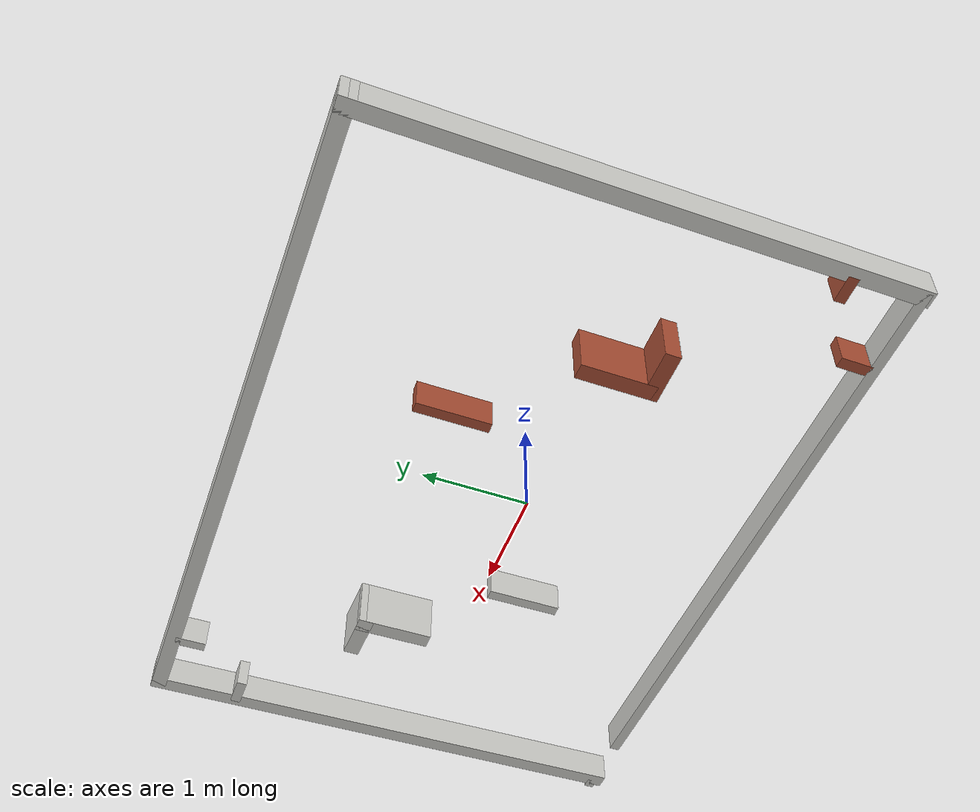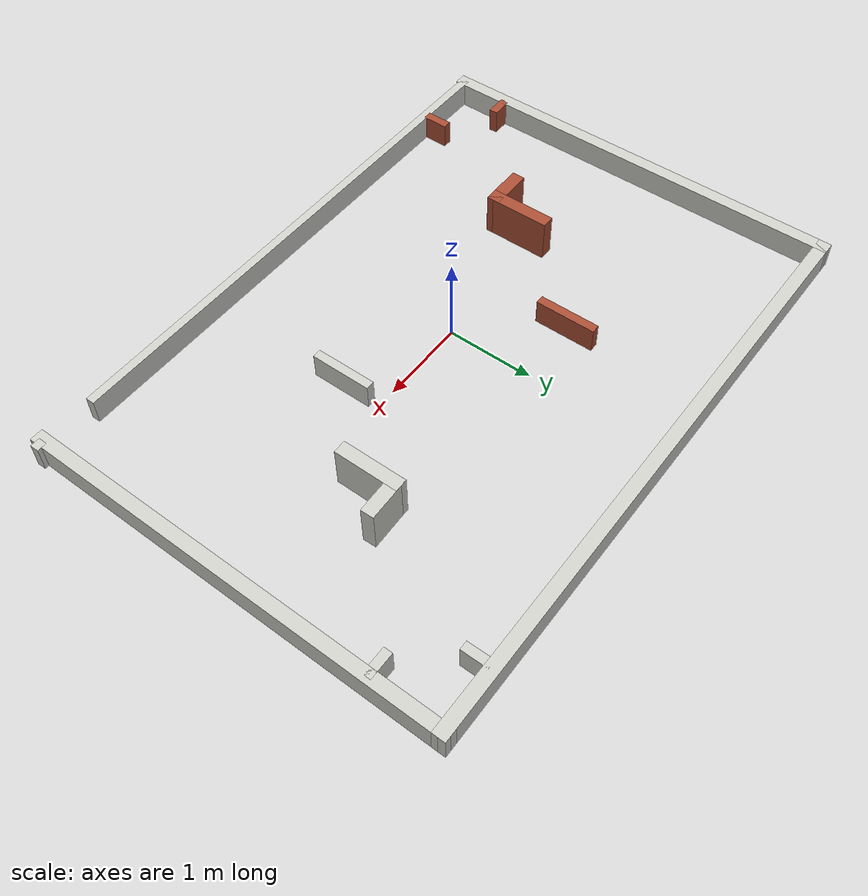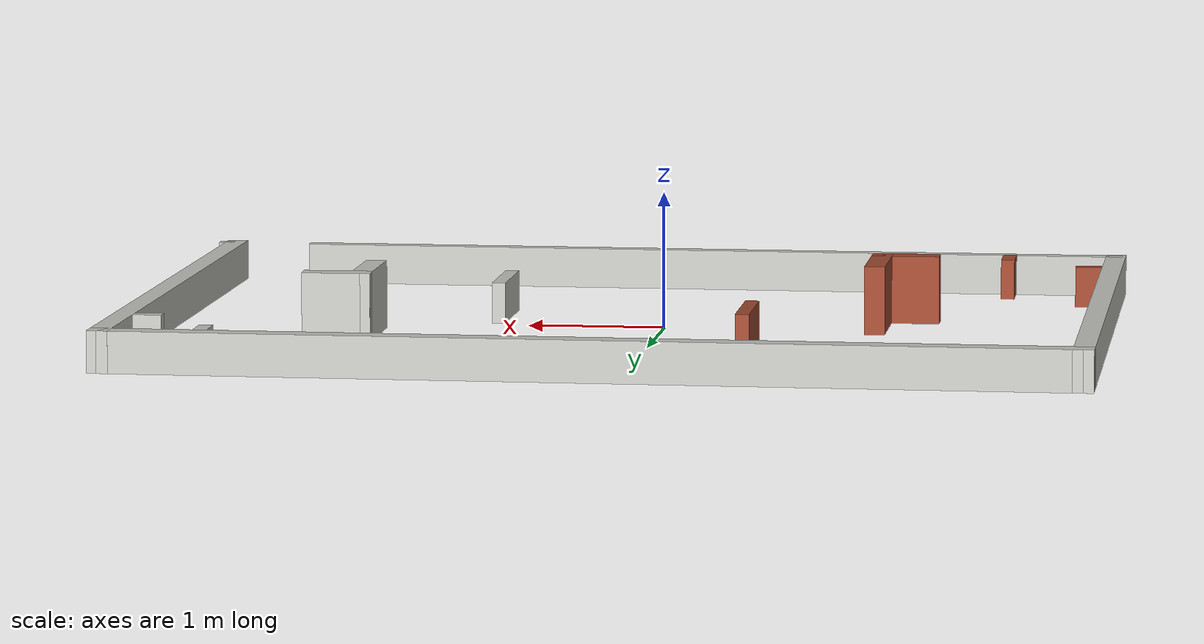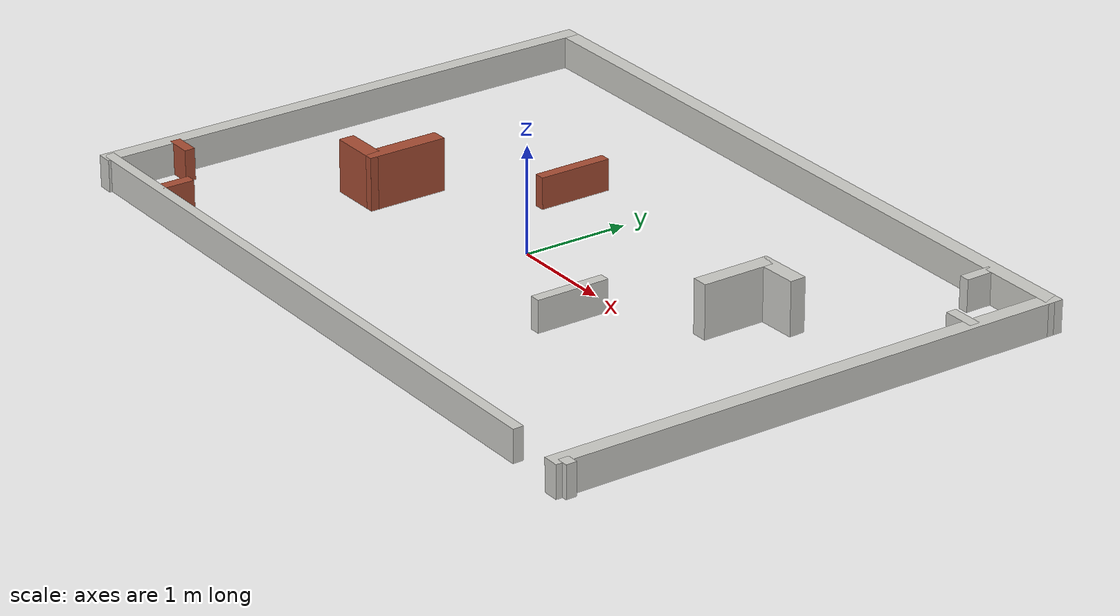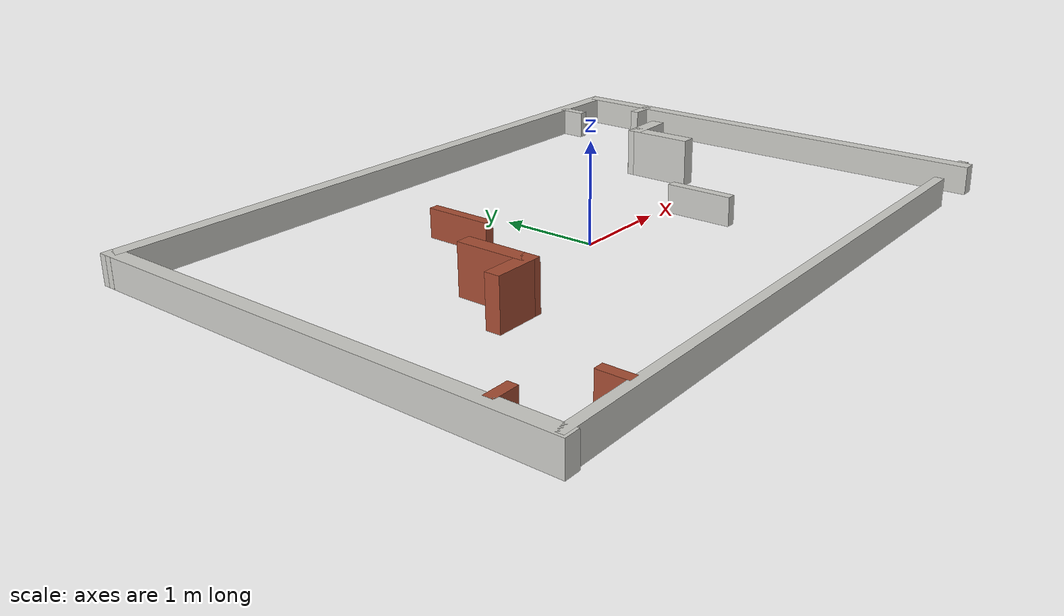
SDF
<?xml version='1.0'?>
<sdf version='1.6'>
  <model name='Building'>
    <pose frame=''>0.230304 0.224957 0 0 -0 0</pose>
    <link name='Wall_0'>
      <collision name='Wall_0_Collision'>
        <geometry>
          <box>
            <size>7.00909 0.15 0.3</size>
          </box>
        </geometry>
        <pose frame=''>0 0 0.15 0 -0 0</pose>
      </collision>
      <visual name='Wall_0_Visual'>
        <pose frame=''>0 0 0.15 0 -0 0</pose>
        <geometry>
          <box>
            <size>7.00909 0.15 0.3</size>
          </box>
        </geometry>
        <material>
          <script>
            <uri>file://media/materials/scripts/gazebo.material</uri>
            <name>Gazebo/CeilingTiled</name>
          </script>
          <ambient>1 1 1 1</ambient>
        </material>
        <meta>
          <layer>0</layer>
        </meta>
      </visual>
      <pose frame=''>-0.007804 2.42504 0 0 0 -0.005249</pose>
    </link>
    <link name='Wall_1'>
      <collision name='Wall_1_Collision'>
        <geometry>
          <box>
            <size>5.0001 0.15 0.3</size>
          </box>
        </geometry>
        <pose frame=''>0 0 0.15 0 -0 0</pose>
      </collision>
      <visual name='Wall_1_Visual'>
        <pose frame=''>0 0 0.15 0 -0 0</pose>
        <geometry>
          <box>
            <size>5.0001 0.15 0.3</size>
          </box>
        </geometry>
        <material>
          <script>
            <uri>file://media/materials/scripts/gazebo.material</uri>
            <name>Gazebo/CeilingTiled</name>
          </script>
          <ambient>1 1 1 1</ambient>
        </material>
        <meta>
          <layer>0</layer>
        </meta>
      </visual>
      <pose frame=''>3.4062 -0.017957 0 0 0 -1.57719</pose>
    </link>
    <link name='Wall_10'>
      <pose frame=''>0.012696 -2.40696 0 0 -0 0</pose>
      <visual name='Wall_10_Visual_0'>
        <pose frame=''>-0.354423 0 0.15 0 -0 0</pose>
        <geometry>
          <box>
            <size>6.29115 0.1 0.3</size>
          </box>
        </geometry>
        <material>
          <script>
            <uri>file://media/materials/scripts/gazebo.material</uri>
            <name>Gazebo/CeilingTiled</name>
          </script>
          <ambient>1 1 1 1</ambient>
        </material>
        <meta>
          <layer>0</layer>
        </meta>
      </visual>
      <collision name='Wall_10_Collision_0'>
        <geometry>
          <box>
            <size>6.29115 0.1 0.3</size>
          </box>
        </geometry>
        <pose frame=''>-0.354423 0 0.15 0 -0 0</pose>
      </collision>
      <visual name='Wall_10_Visual_1'>
        <pose frame=''>3.44558 0 0.15 0 -0 0</pose>
        <geometry>
          <box>
            <size>0.108846 0.1 0.3</size>
          </box>
        </geometry>
        <material>
          <script>
            <uri>file://media/materials/scripts/gazebo.material</uri>
            <name>Gazebo/CeilingTiled</name>
          </script>
          <ambient>1 1 1 1</ambient>
        </material>
        <meta>
          <layer>0</layer>
        </meta>
      </visual>
      <collision name='Wall_10_Collision_1'>
        <geometry>
          <box>
            <size>0.108846 0.1 0.3</size>
          </box>
        </geometry>
        <pose frame=''>3.44558 0 0.15 0 -0 0</pose>
      </collision>
    </link>
    <link name='Wall_14'>
      <collision name='Wall_14_Collision'>
        <geometry>
          <box>
            <size>0.761 0.15 0.5</size>
          </box>
        </geometry>
        <pose frame=''>0 0 0.25 0 -0 0</pose>
      </collision>
      <visual name='Wall_14_Visual'>
        <pose frame=''>0 0 0.25 0 -0 0</pose>
        <geometry>
          <box>
            <size>0.761 0.15 0.5</size>
          </box>
        </geometry>
        <material>
          <script>
            <uri>file://media/materials/scripts/gazebo.material</uri>
            <name>Gazebo/Bricks</name>
          </script>
          <ambient>0.996078 0.47451 0.0196078 1</ambient>
        </material>
        <meta>
          <layer>0</layer>
        </meta>
      </visual>
      <pose frame=''>-1.7903 -0.453457 0 0 0 -1.5708</pose>
    </link>
    <link name='Wall_15'>
      <collision name='Wall_15_Collision'>
        <geometry>
          <box>
            <size>0.5 0.15 0.5</size>
          </box>
        </geometry>
        <pose frame=''>0 0 0.25 0 -0 0</pose>
      </collision>
      <visual name='Wall_15_Visual'>
        <pose frame=''>0 0 0.25 0 -0 0</pose>
        <geometry>
          <box>
            <size>0.5 0.15 0.5</size>
          </box>
        </geometry>
        <material>
          <script>
            <uri>file://media/materials/scripts/gazebo.material</uri>
            <name>Gazebo/Bricks</name>
          </script>
          <ambient>0.996078 0.47451 0.0196078 1</ambient>
        </material>
        <meta>
          <layer>0</layer>
        </meta>
      </visual>
      <pose frame=''>-1.9653 -0.759457 0 0 0 -3.13874</pose>
    </link>
    <link name='Wall_17'>
      <collision name='Wall_17_Collision'>
        <geometry>
          <box>
            <size>0.5 0.15 0.5</size>
          </box>
        </geometry>
        <pose frame=''>0 0 0.25 0 -0 0</pose>
      </collision>
      <visual name='Wall_17_Visual'>
        <pose frame=''>0 0 0.25 0 -0 0</pose>
        <geometry>
          <box>
            <size>0.5 0.15 0.5</size>
          </box>
        </geometry>
        <material>
          <script>
            <uri>file://media/materials/scripts/gazebo.material</uri>
            <name>Gazebo/CeilingTiled</name>
          </script>
          <ambient>0.435294 0.796078 0.67451 1</ambient>
        </material>
        <meta>
          <layer>0</layer>
        </meta>
      </visual>
      <pose frame=''>2.0397 0.689543 0 0 0 -3.11017</pose>
    </link>
    <link name='Wall_18'>
      <collision name='Wall_18_Collision'>
        <geometry>
          <box>
            <size>0.739 0.15 0.5</size>
          </box>
        </geometry>
        <pose frame=''>0 0 0.25 0 -0 0</pose>
      </collision>
      <visual name='Wall_18_Visual'>
        <pose frame=''>0 0 0.25 0 -0 0</pose>
        <geometry>
          <box>
            <size>0.739 0.15 0.5</size>
          </box>
        </geometry>
        <material>
          <script>
            <uri>file://media/materials/scripts/gazebo.material</uri>
            <name>Gazebo/CeilingTiled</name>
          </script>
          <ambient>0.435294 0.796078 0.67451 1</ambient>
        </material>
        <meta>
          <layer>0</layer>
        </meta>
      </visual>
      <pose frame=''>1.8647 0.389543 0 0 0 -1.5708</pose>
    </link>
    <link name='Wall_20'>
      <collision name='Wall_20_Collision'>
        <geometry>
          <box>
            <size>0.25 0.1 0.3</size>
          </box>
        </geometry>
        <pose frame=''>0 0 0.15 0 -0 0</pose>
      </collision>
      <visual name='Wall_20_Visual'>
        <pose frame=''>0 0 0.15 0 -0 0</pose>
        <geometry>
          <box>
            <size>0.25 0.1 0.3</size>
          </box>
        </geometry>
        <material>
          <script>
            <uri>file://media/materials/scripts/gazebo.material</uri>
            <name>Gazebo/Bricks</name>
          </script>
          <ambient>0.996078 0.47451 0.0196078 1</ambient>
        </material>
        <meta>
          <layer>0</layer>
        </meta>
      </visual>
      <pose frame=''>-3.2903 -1.77996 0 0 -0 0</pose>
    </link>
    <link name='Wall_22'>
      <collision name='Wall_22_Collision'>
        <geometry>
          <box>
            <size>0.3 0.1 0.3</size>
          </box>
        </geometry>
        <pose frame=''>0 0 0.15 0 -0 0</pose>
      </collision>
      <visual name='Wall_22_Visual'>
        <pose frame=''>0 0 0.15 0 -0 0</pose>
        <geometry>
          <box>
            <size>0.3 0.1 0.3</size>
          </box>
        </geometry>
        <material>
          <script>
            <uri>file://media/materials/scripts/gazebo.material</uri>
            <name>Gazebo/Bricks</name>
          </script>
          <ambient>0.996078 0.47451 0.0196078 1</ambient>
        </material>
        <meta>
          <layer>0</layer>
        </meta>
      </visual>
      <pose frame=''>-2.6333 -2.23096 0 0 -0 1.5708</pose>
    </link>
    <link name='Wall_24'>
      <collision name='Wall_24_Collision'>
        <geometry>
          <box>
            <size>0.3 0.1 0.3</size>
          </box>
        </geometry>
        <pose frame=''>0 0 0.15 0 -0 0</pose>
      </collision>
      <visual name='Wall_24_Visual'>
        <pose frame=''>0 0 0.15 0 -0 0</pose>
        <geometry>
          <box>
            <size>0.3 0.1 0.3</size>
          </box>
        </geometry>
        <material>
          <script>
            <uri>file://media/materials/scripts/gazebo.material</uri>
            <name>Gazebo/CeilingTiled</name>
          </script>
          <ambient>0.435294 0.796078 0.67451 1</ambient>
        </material>
        <meta>
          <layer>0</layer>
        </meta>
      </visual>
      <pose frame=''>2.7217 2.23804 0 0 0 -1.5708</pose>
    </link>
    <link name='Wall_26'>
      <collision name='Wall_26_Collision'>
        <geometry>
          <box>
            <size>0.3 0.1 0.3</size>
          </box>
        </geometry>
        <pose frame=''>0 0 0.15 0 -0 0</pose>
      </collision>
      <visual name='Wall_26_Visual'>
        <pose frame=''>0 0 0.15 0 -0 0</pose>
        <geometry>
          <box>
            <size>0.3 0.1 0.3</size>
          </box>
        </geometry>
        <material>
          <script>
            <uri>file://media/materials/scripts/gazebo.material</uri>
            <name>Gazebo/CeilingTiled</name>
          </script>
          <ambient>0.435294 0.796078 0.67451 1</ambient>
        </material>
        <meta>
          <layer>0</layer>
        </meta>
      </visual>
      <pose frame=''>3.2847 1.60704 0 0 -0 3.14159</pose>
    </link>
    <link name='Wall_28'>
      <collision name='Wall_28_Collision'>
        <geometry>
          <box>
            <size>0.699918 0.1 0.3</size>
          </box>
        </geometry>
        <pose frame=''>0 0 0.15 0 -0 0</pose>
      </collision>
      <visual name='Wall_28_Visual'>
        <pose frame=''>0 0 0.15 0 -0 0</pose>
        <geometry>
          <box>
            <size>0.699918 0.1 0.3</size>
          </box>
        </geometry>
        <material>
          <script>
            <uri>file://media/materials/scripts/gazebo.material</uri>
            <name>Gazebo/Bricks</name>
          </script>
          <ambient>1 1 1 1</ambient>
        </material>
        <meta>
          <layer>0</layer>
        </meta>
      </visual>
      <pose frame=''>-0.946304 0.744043 0 0 0 -1.5708</pose>
    </link>
    <link name='Wall_3'>
      <collision name='Wall_3_Collision'>
        <geometry>
          <box>
            <size>5 0.15 0.3</size>
          </box>
        </geometry>
        <pose frame=''>0 0 0.15 0 -0 0</pose>
      </collision>
      <visual name='Wall_3_Visual'>
        <pose frame=''>0 0 0.15 0 -0 0</pose>
        <geometry>
          <box>
            <size>5 0.15 0.3</size>
          </box>
        </geometry>
        <material>
          <script>
            <uri>file://media/materials/scripts/gazebo.material</uri>
            <name>Gazebo/CeilingTiled</name>
          </script>
          <ambient>1 1 1 1</ambient>
        </material>
        <meta>
          <layer>0</layer>
        </meta>
      </visual>
      <pose frame=''>-3.4373 0.018043 0 0 -0 1.5708</pose>
    </link>
    <link name='Wall_30'>
      <collision name='Wall_30_Collision'>
        <geometry>
          <box>
            <size>0.700168 0.1 0.3</size>
          </box>
        </geometry>
        <pose frame=''>0 0 0.15 0 -0 0</pose>
      </collision>
      <visual name='Wall_30_Visual'>
        <pose frame=''>0 0 0.15 0 -0 0</pose>
        <geometry>
          <box>
            <size>0.700168 0.1 0.3</size>
          </box>
        </geometry>
        <material>
          <script>
            <uri>file://media/materials/scripts/gazebo.material</uri>
            <name>Gazebo/CeilingTiled</name>
          </script>
          <ambient>0.435294 0.796078 0.67451 1</ambient>
        </material>
        <meta>
          <layer>0</layer>
        </meta>
      </visual>
      <pose frame=''>1.0117 -0.661957 0 0 0 -1.5708</pose>
    </link>
    <static>1</static>
  </model>
</sdf>
